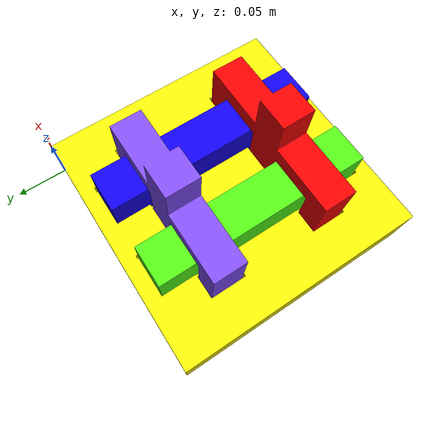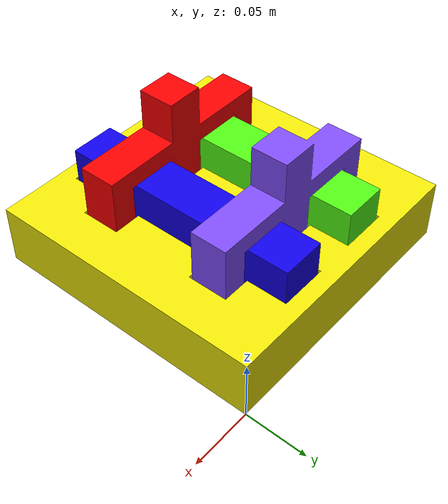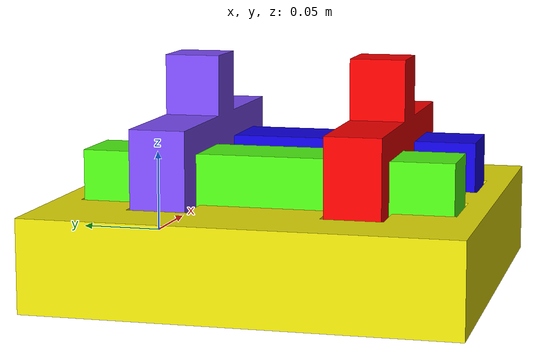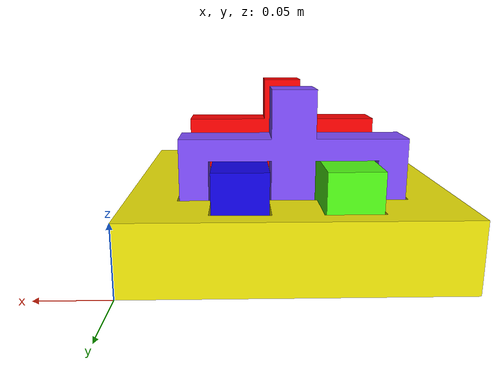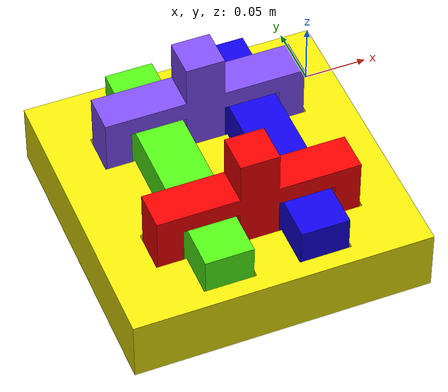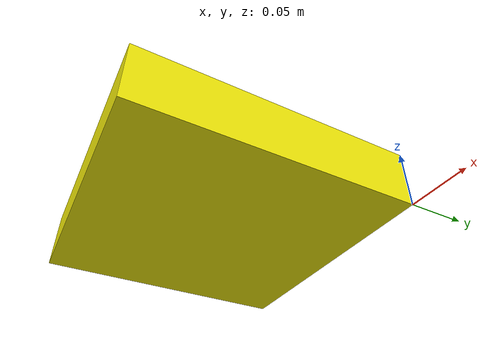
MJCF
<?xml version='1.0' encoding='utf-8'?>
<mujoco model="assembly3">
  <asset>
    <mesh name="obj1" file="meshes/assembly3/obj1.obj" scale="0.001 0.001 0.001" />
    <mesh name="obj2" file="meshes/assembly3/obj2.obj" scale="0.001 0.001 0.001" />
    <mesh name="obj3" file="meshes/assembly3/obj3.obj" scale="0.001 0.001 0.001" />
    <mesh name="obj4" file="meshes/assembly3/obj4.obj" scale="0.001 0.001 0.001" />
    <mesh name="obj5" file="meshes/assembly3/obj5.obj" scale="0.001 0.001 0.001" />
    <material name="mat1" rgba="0.93725 0.90588 0.02745 1" />
    <material name="mat2" rgba="0.32157 1 0.07843 1" />
    <material name="mat3" rgba="0.06275 0 0.9098 1" />
    <material name="mat4" rgba="1 0 0 1" />
    <material name="mat5" rgba="0.49804 0.30196 1 1" />
  </asset>
  <worldbody>
    <body>
      <body name="object">
        <geom name="obj1" mesh="obj1" type="mesh" contype="0" conaffinity="0" group="1" material="mat1" />
        <geom name="obj2" mesh="obj2" type="mesh" contype="0" conaffinity="0" group="1" material="mat2" />
        <geom name="obj3" mesh="obj3" type="mesh" contype="0" conaffinity="0" group="1" material="mat3" />
        <geom name="obj4" mesh="obj4" type="mesh" contype="0" conaffinity="0" group="1" material="mat4" />
        <geom name="obj5" mesh="obj5" type="mesh" contype="0" conaffinity="0" group="1" material="mat5" />
        <geom name="obj1" mesh="obj1" type="mesh" density="500" friction="1 0.005 0.0001" group="0" />
        <geom name="obj2" mesh="obj2" type="mesh" density="500" friction="1 0.005 0.0001" group="0" />
        <geom name="obj3" mesh="obj3" type="mesh" density="500" friction="1 0.005 0.0001" group="0" />
        <geom name="obj4" mesh="obj4" type="mesh" density="500" friction="1 0.005 0.0001" group="0" />
        <geom name="obj5" mesh="obj5" type="mesh" density="500" friction="1 0.005 0.0001" group="0" />
        <site name="bottom_site" pos="0 0 -0.025" size="0.005" rgba="0 0 0 0" />
        <site name="top_site" pos="0 0 0.025" size="0.005" rgba="0 0 0 0" />
        <site name="horizontal_radius_site" pos="0.03 0.03 0" size="0.005" rgba="0 0 0 0" />
      </body>
    </body>
  </worldbody>
</mujoco>
